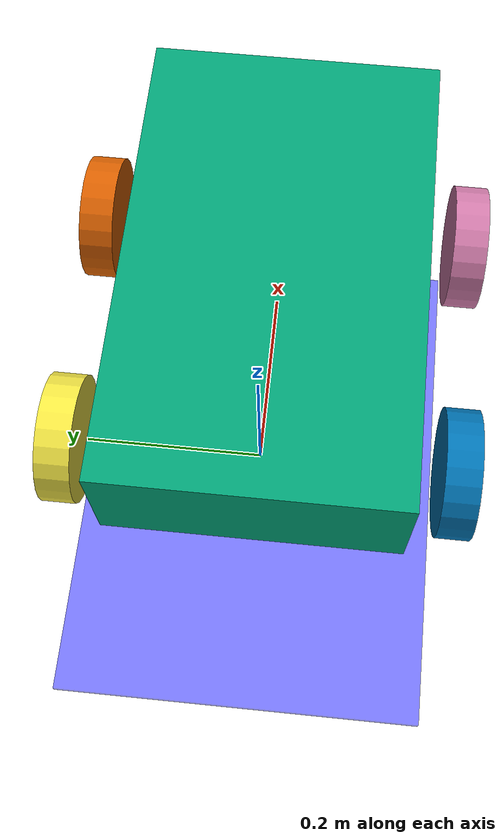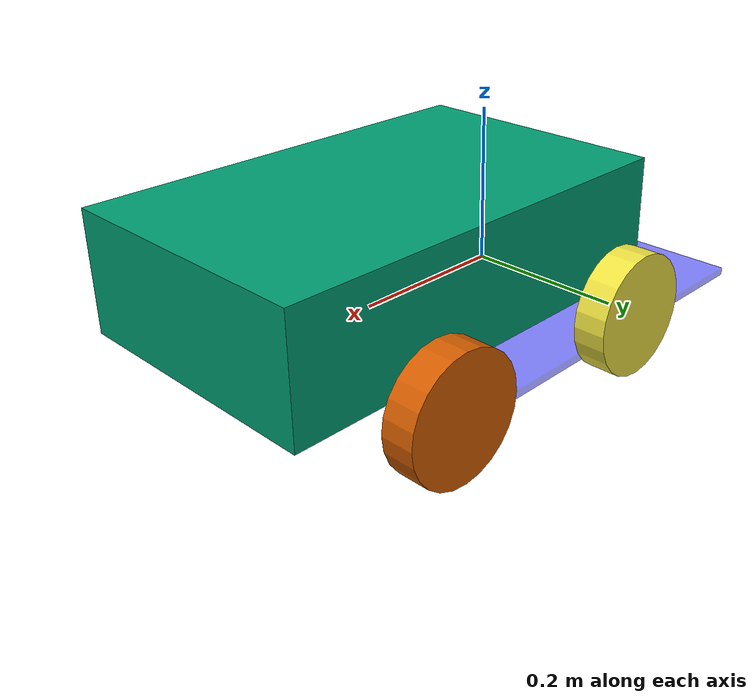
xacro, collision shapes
<?xml version="1.0"?>
<robot name="car_robot" xmlns:xacro="http://www.ros.org/wiki/xacro" xmlns:gazebo="http://gazebo.apache.org/xmlns/gazebo">

  <xacro:include filename="inertial_macros.xacro" />

  <!-- Base Link -->
  <link name="base_link"/>
  <link name="base_footprint">
    <collision>
      <geometry>
        <box size="0.55 0.4 0.01"/>
      </geometry>
    </collision>
    <visual>
      <geometry>
        <box size="0.55 0.4 0.01"/>
      </geometry>
      <material name="footprint_material">
        <color rgba="0.0 0.0 1.0 0.5"/>
      </material>
    </visual>
  </link>

  <joint name="base_footprint_joint" type="fixed">
    <parent link="base_link"/>
    <child link="base_footprint"/>
    <origin xyz="0 0 -0.05"/>
  </joint>

  <!-- Chassis -->
  <joint name="chassis_joint" type="fixed">
    <parent link="base_link"/>
    <child link="chassis"/>
    <origin xyz="-0.1 0 0"/>
  </joint>

  <link name="chassis">
    <visual>
      <origin xyz="0.275 0 0.075" rpy="0 0 0"/>
      <geometry>
        <mesh filename="file:///opt/ros/jazzy/share/nav2_minimal_tb3_sim/models/turtlebot3_model/meshes/waffle_base.dae" scale="2.0 1.5 1.5"/>
      </geometry>
    </visual>
    <collision>
      <origin xyz="0.275 0 0.075"/>
      <geometry>
        <box size="0.55 0.34 0.15"/>
      </geometry>
    </collision>
      <xacro:inertial_box mass="0.5" x="0.55" y="0.4" z="0.15">
            <origin xyz="0.275 0 0.075" rpy="0 0 0"/>
         </xacro:inertial_box>
  </link>

  <!-- Rear Wheels -->
  <joint name="left_wheel_joint" type="continuous">
    <parent link="base_link"/>
    <child link="left_wheel"/>
    <origin xyz="0 0.225 0" rpy="-1.57 0 0"/>
    <axis xyz="0 0 1"/>
  </joint>

  <link name="left_wheel">
    <visual>
      <origin xyz="0 0 0" rpy="1.5707 0 0"/>
      <geometry>
        <mesh filename="file:///opt/ros/jazzy/share/nav2_minimal_tb3_sim/models/turtlebot3_model/meshes/tire.dae" scale="2.5 2.5 2.5"/>
      </geometry>
    </visual>
    <collision>
      <geometry>
        <cylinder radius="0.075" length="0.04"/>
      </geometry>
    </collision>
        <xacro:inertial_cylinder mass="0.1" length="0.04" radius="0.075">
            <origin xyz="0 0 0" rpy="0 0 0"/>
         </xacro:inertial_cylinder>
  </link>

  <joint name="right_wheel_joint" type="continuous">
    <parent link="base_link"/>
    <child link="right_wheel"/>
    <origin xyz="0 -0.225 0" rpy="1.57 0 0"/>
    <axis xyz="0 0 -1"/>
  </joint>

  <link name="right_wheel">
    <visual>
      <origin xyz="0 0 0" rpy="1.5707 0 0"/>
      <geometry>
        <mesh filename="file:///opt/ros/jazzy/share/nav2_minimal_tb3_sim/models/turtlebot3_model/meshes/tire.dae" scale="2.5 2.5 2.5"/>
      </geometry>
    </visual>
    <collision>
      <geometry>
        <cylinder radius="0.075" length="0.04"/>
      </geometry>
    </collision>
        <xacro:inertial_cylinder mass="0.1" length="0.04" radius="0.075">
            <origin xyz="0 0 0" rpy="0 0 0"/>
         </xacro:inertial_cylinder>
  </link>

  <!-- Front Wheels -->
  <joint name="left_front_wheel_joint" type="fixed">
    <parent link="base_link"/>
    <child link="left_front_wheel"/>
    <origin xyz="0.3 0.225 0" rpy="-1.57 0 0"/>
    <axis xyz="0 0 1"/>
  </joint>

  <link name="left_front_wheel">
    <visual>
      <origin xyz="0 0 0" rpy="1.5707 0 0"/>
      <geometry>
        <mesh filename="file:///opt/ros/jazzy/share/nav2_minimal_tb3_sim/models/turtlebot3_model/meshes/tire.dae" scale="2.5 2.5 2.5"/>
      </geometry>
    </visual>
    <collision>
      <geometry>
        <cylinder radius="0.075" length="0.04"/>
      </geometry>
    </collision>
        <xacro:inertial_cylinder mass="0.1" length="0.04" radius="0.075">
            <origin xyz="0 0 0" rpy="0 0 0"/>
         </xacro:inertial_cylinder>
  </link>

  <joint name="right_front_wheel_joint" type="fixed">
    <parent link="base_link"/>
    <child link="right_front_wheel"/>
    <origin xyz="0.3 -0.225 0" rpy="1.57 0 0"/>
    <axis xyz="0 0 -1"/>
  </joint>

  <link name="right_front_wheel">
    <visual>
      <origin xyz="0 0 0" rpy="1.5707 0 0"/>
      <geometry>
        <mesh filename="file:///opt/ros/jazzy/share/nav2_minimal_tb3_sim/models/turtlebot3_model/meshes/tire.dae" scale="2.5 2.5 2.5"/>
      </geometry>
    </visual>
    <collision>
      <geometry>
        <cylinder radius="0.075" length="0.04"/>
      </geometry>
    </collision>
        <xacro:inertial_cylinder mass="0.1" length="0.04" radius="0.075">
            <origin xyz="0 0 0" rpy="0 0 0"/>
         </xacro:inertial_cylinder>
  </link>

  <!-- Gazebo Parameters -->
  <gazebo reference="chassis">
    <mu1>1.0</mu1>
    <mu2>1.0</mu2>
  </gazebo>

  <gazebo reference="left_wheel">
    <mu1>1.0</mu1>
    <mu2>1.0</mu2>
  </gazebo>

  <gazebo reference="right_wheel">
    <mu1>1.0</mu1>
    <mu2>1.0</mu2>
  </gazebo>

  <gazebo reference="left_front_wheel">
       <mu1>0.000001</mu1>
         <mu2>0.000001</mu2>
  </gazebo>

  <gazebo reference="right_front_wheel">
     <mu1>0.000001</mu1>
         <mu2>0.000001</mu2>
  </gazebo>

</robot>
